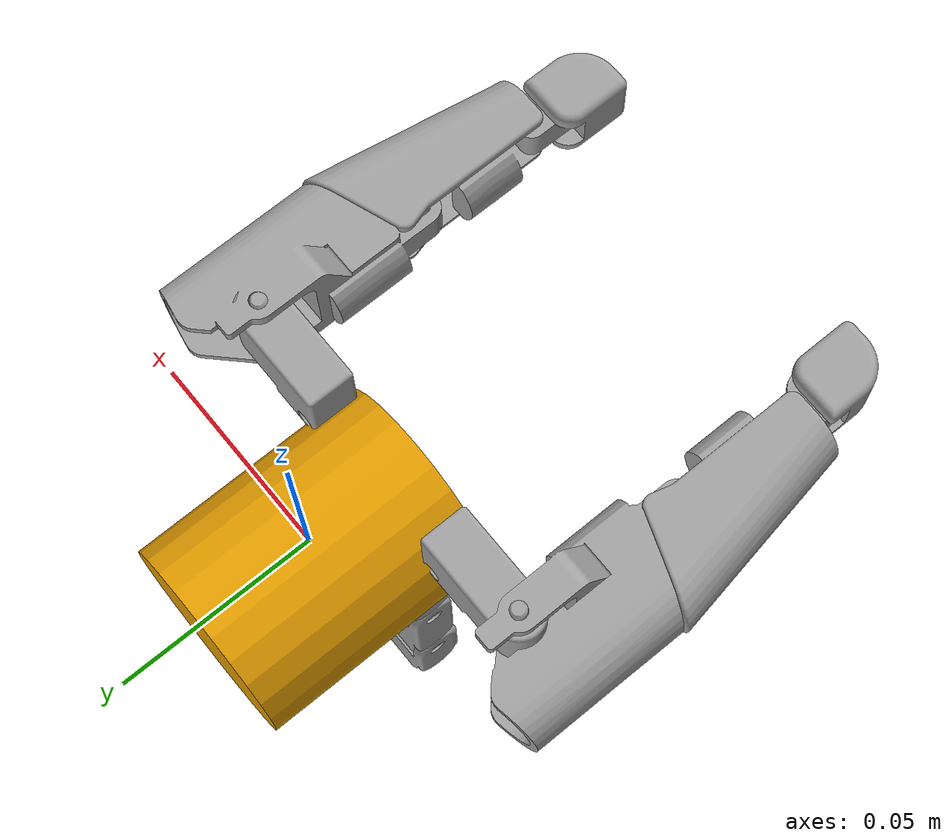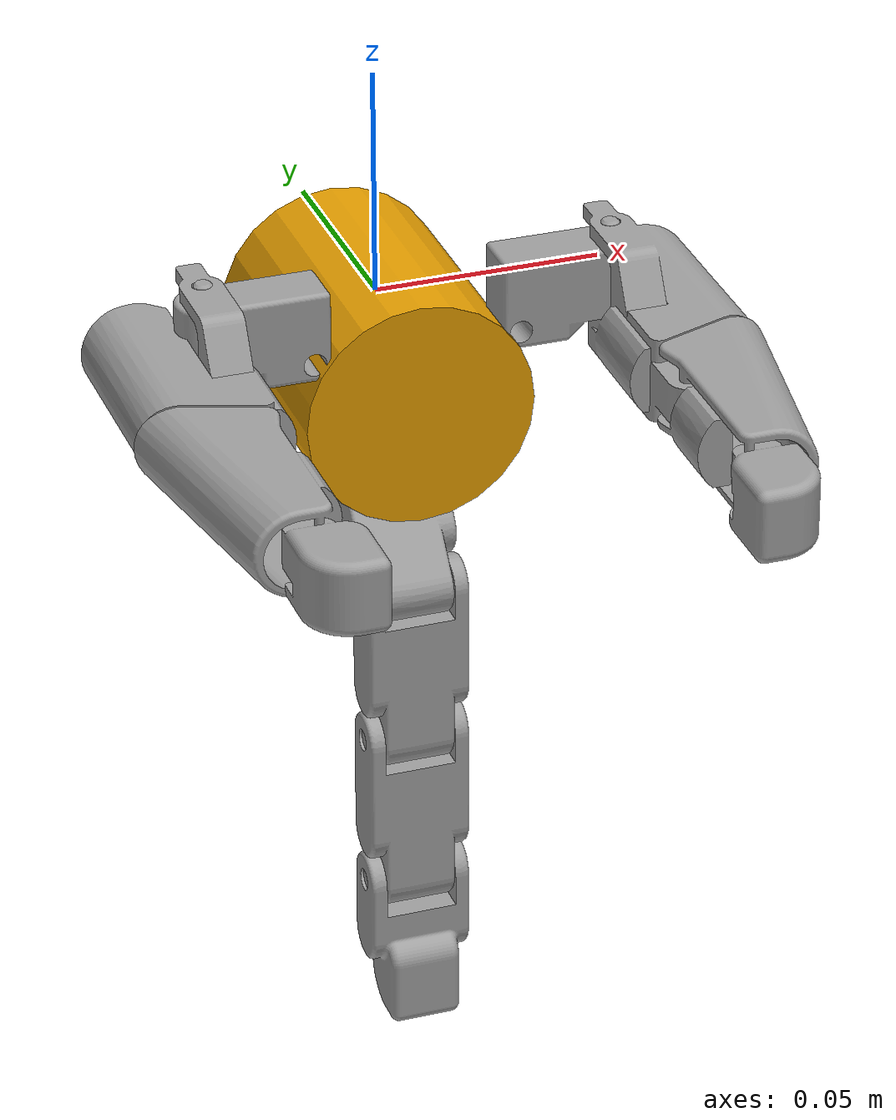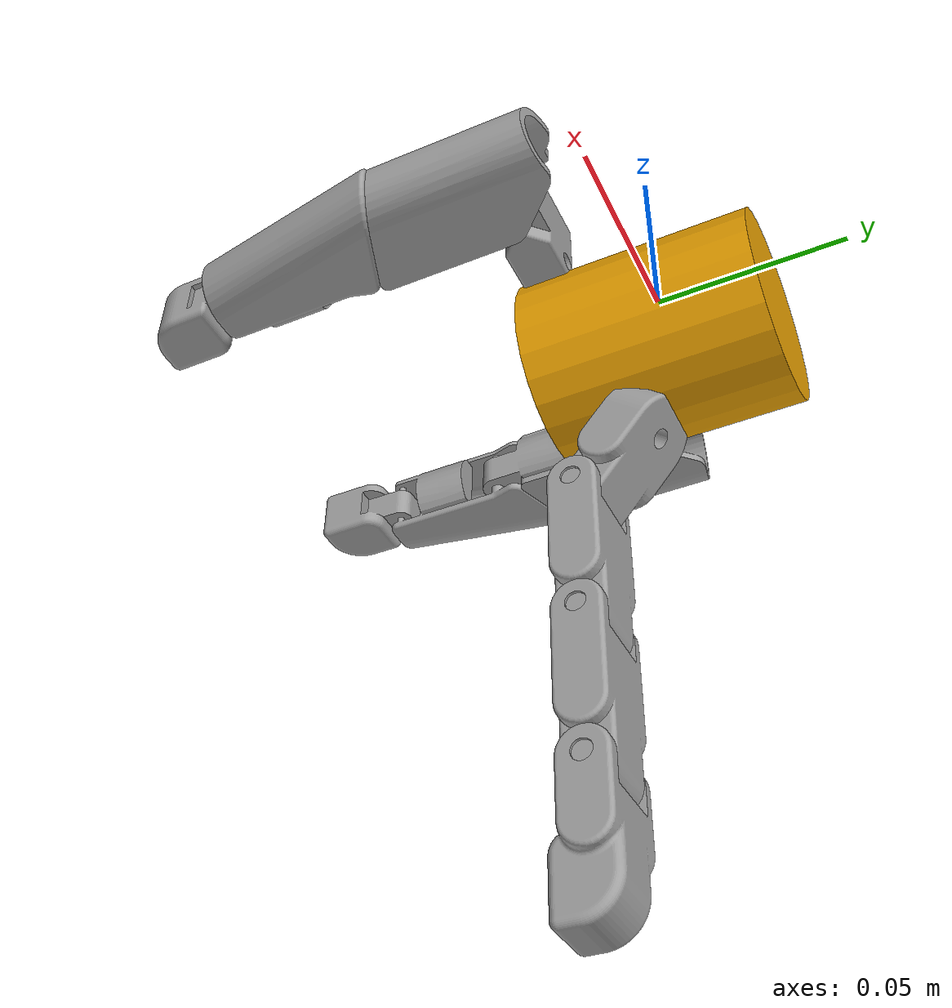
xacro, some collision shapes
<?xml version="1.0"?>
<robot xmlns:xacro="http://ros.org/wiki/xacro" name="k3hand">

  <link name="wrist">
    <visual>
      <geometry>
        <mesh filename="package://mycobot_320_moveit/urdf/k3_urdf/wrist.dae" />
      </geometry>
      <origin xyz="0 0 0" rpy="0 0 0" />
    </visual>
    <collision>
      <geometry>
        <cylinder length="0.06" radius="0.025" />
      </geometry>
      <origin xyz="0 0 -0.015" rpy="-1.570796 0 0" />
    </collision>
    <inertial>
      <mass value="0.1" />
      <inertia ixx="1.0" ixy="0.0" ixz="0.0" iyy="1.0" iyz="0.0" izz="1.0" />
    </inertial>
  </link>
  <link name="thumb_met">
    <visual>
      <geometry>
        <mesh filename="package://mycobot_320_moveit/urdf/k3_urdf/thumb_met.dae" />
      </geometry>
      <origin xyz="0.0 0.0080 0.043" rpy="0 0 0" />
    </visual>
    <collision>
      <geometry>
        <box size="0.0225 0.035 0.012" />
      </geometry>
      <origin xyz="0.0 -0.007 -0.008" rpy="0.88 0 0" />
    </collision>
    <inertial>
      <mass value="0.01" />
      <inertia ixx="1.0" ixy="0.0" ixz="0.0" iyy="1.0" iyz="0.0" izz="1.0" />
    </inertial>
  </link>
  <link name="thumb_middle_1">
    <visual>
      <geometry>
        <mesh filename="package://mycobot_320_moveit/urdf/k3_urdf/thumb_middle_1.dae" />
      </geometry>
      <origin xyz="0.0 0.0225 0.0607" />
    </visual>
    <collision>
      <geometry>
        <box size="0.0225 0.012 0.05" />
      </geometry>
      <origin xyz="0.0 0.0 -0.02" rpy="0 0 0" />
    </collision>
    <inertial>
      <mass value="0.01" />
      <inertia ixx="1.0" ixy="0.0" ixz="0.0" iyy="1.0" iyz="0.0" izz="1.0" />
    </inertial>
  </link>
  <link name="thumb_middle_2">
    <visual>
      <geometry>
        <mesh filename="package://mycobot_320_moveit/urdf/k3_urdf/thumb_middle_2.dae" />
      </geometry>
      <origin xyz="0.0 0.0225 0.0965" />
    </visual>
    <collision>
      <geometry>
        <box size="0.0225 0.012 0.05" />
      </geometry>
      <origin xyz="0.0 0.0 -0.02" rpy="0 0 0" />
    </collision>
    <inertial>
      <mass value="0.01" />
      <inertia ixx="1.0" ixy="0.0" ixz="0.0" iyy="1.0" iyz="0.0" izz="1.0" />
    </inertial>
  </link>

  <link name="thumb_tip">
    <visual>
      <geometry>
        <mesh filename="package://mycobot_320_moveit/urdf/k3_urdf/thumb_tip.dae" />
      </geometry>
      <origin xyz="0.0 0.0225 0.1325" />
    </visual>
    <collision>
      <geometry>
        <box size="0.0225 0.015 0.040" />
      </geometry>
      <origin xyz="0.0 -0.0015 -0.015" rpy="0 0 0" />
    </collision>
    <inertial>
      <mass value="0.01" />
      <inertia ixx="1.0" ixy="0.0" ixz="0.0" iyy="1.0" iyz="0.0" izz="1.0" />
    </inertial>
  </link>

  <link name="fing_met_1">
    <visual>
      <geometry>
        <mesh filename="package://mycobot_320_moveit/urdf/k3_urdf/fing_met_1.dae" />
      </geometry>
      <origin xyz="0.0225 0.0225 0.00" rpy="0.0 0.0 0.0" />
    </visual>
    <collision>
      <geometry>
        <box size="0.020 0.012 0.03" />
      </geometry>
      <origin xyz="0.006 -0.0 0.011" />
    </collision>

    <inertial>
      <mass value="0.01" />
      <inertia ixx="1.0" ixy="0.0" ixz="0.0" iyy="1.0" iyz="0.0" izz="1.0" />
    </inertial>
  </link>

  <link name="fing_base_1">
    <visual>
      <geometry>
        <mesh filename="package://mycobot_320_moveit/urdf/k3_urdf/fing_base_1.dae" />
      </geometry>
      <origin xyz="0.015 0.0225 -0.022" />
    </visual>
    <collision>
      <geometry>
        <box size="0.030 0.03 0.05" />
      </geometry>
      <origin xyz="-0.002 0.008 0.01" />
    </collision>
    <inertial>
      <mass value="0.01" />
      <inertia ixx="1.0" ixy="0.0" ixz="0.0" iyy="1.0" iyz="0.0" izz="1.0" />
    </inertial>
  </link>

  <link name="fing_middle_1">
    <visual>
      <geometry>
        <mesh filename="package://mycobot_320_moveit/urdf/k3_urdf/fing_middle_1.dae" />
      </geometry>
      <origin xyz="0.015 0.0225 -0.022" />
    </visual>
    <collision>
      <geometry>
        <box size="0.020 0.03 0.05" />
      </geometry>
      <origin xyz="-0.007 0.008 0.058" />
    </collision>
    <inertial>
      <mass value="0.01" />
      <inertia ixx="1.0" ixy="0.0" ixz="0.0" iyy="1.0" iyz="0.0" izz="1.0" />
    </inertial>
  </link>
  <link name="fing_tip_1">
    <visual>
      <geometry>
        <mesh filename="package://mycobot_320_moveit/urdf/k3_urdf/fing_tip_1.dae" />
      </geometry>
      <origin xyz="0.015 0.0225 -0.022" />
    </visual>
    <collision>
      <geometry>
        <box size="0.020 0.015 0.02" />
      </geometry>
      <origin xyz="-0.007 0.00 0.09" />
    </collision>
    <inertial>
      <mass value="0.01" />
      <inertia ixx="1.0" ixy="0.0" ixz="0.0" iyy="1.0" iyz="0.0" izz="1.0" />
    </inertial>
  </link>

  <link name="fing_met_2">
    <visual>
      <geometry>
        <mesh filename="package://mycobot_320_moveit/urdf/k3_urdf/fing_met_2.dae" />
      </geometry>
      <origin xyz="-0.0225 0.0225 0.00" rpy="0.0 0.0 0.0" />
    </visual>
    <collision>
      <geometry>
        <box size="0.020 0.0120 0.03" />
      </geometry>
      <origin xyz="-0.006 -0.0 0.011" />
    </collision>

    <inertial>
      <mass value="0.01" />
      <inertia ixx="1.0" ixy="0.0" ixz="0.0" iyy="1.0" iyz="0.0" izz="1.0" />
    </inertial>
  </link>
  <link name="fing_base_2">
    <visual>
      <geometry>
        <mesh filename="package://mycobot_320_moveit/urdf/k3_urdf/fing_base_2.dae" />
      </geometry>
      <origin xyz="-0.015 0.0225 -0.022" />
    </visual>
    <collision>
      <geometry>
        <box size="0.030 0.03 0.05" />
      </geometry>
      <origin xyz="0.002 0.008 0.01" />
    </collision>
    <inertial>
      <mass value="0.01" />
      <inertia ixx="1.0" ixy="0.0" ixz="0.0" iyy="1.0" iyz="0.0" izz="1.0" />
    </inertial>
  </link>

  <link name="fing_middle_2">
    <visual>
      <geometry>
        <mesh filename="package://mycobot_320_moveit/urdf/k3_urdf/fing_middle_2.dae" />
      </geometry>
      <origin xyz="-0.015 0.0225 -0.022" />
    </visual>
    <collision>
      <geometry>
        <box size="0.020 0.03 0.05" />
      </geometry>
      <origin xyz="0.007 0.008 0.058" />
    </collision>
    <inertial>
      <mass value="0.01" />
      <inertia ixx="1.0" ixy="0.0" ixz="0.0" iyy="1.0" iyz="0.0" izz="1.0" />
    </inertial>
  </link>
  <link name="fing_tip_2">
    <visual>
      <geometry>
        <mesh filename="package://mycobot_320_moveit/urdf/k3_urdf/fing_tip_2.dae" />
      </geometry>
      <origin xyz="-0.015 0.0225 -0.022" />
    </visual>
    <collision>
      <geometry>
        <box size="0.020 0.015 0.02" />
      </geometry>
      <origin xyz="0.007 0.0 0.09" />
    </collision>
    <inertial>
      <mass value="0.01" />
      <inertia ixx="1.0" ixy="0.0" ixz="0.0" iyy="1.0" iyz="0.0" izz="1.0" />
    </inertial>
  </link>

  <joint name="hand_joint_0" type="revolute">
    <axis xyz="0.0 -1.0 0.0" />
    <parent link="wrist" />
    <child link="fing_met_1" />
    <origin xyz="-0.0225 -0.0225 0.00" rpy="0 -1.570796 0" />
    <limit lower="-1.570796" upper="0.523599" effort="0.0" velocity="1" />
  </joint>
  <joint name="hand_joint_1" type="revolute">
    <axis xyz="1.0 0.0 0" />
    <parent link="fing_met_1" />
    <child link="fing_base_1" />
    <origin xyz="0.0075 -0.0 0.022" rpy="1.570796 0.0 0.0" />
    <limit lower="-1.570796" upper="1.579796" effort="0.0" velocity="1" />
  </joint>
  <joint name="hand_joint_2" type="revolute">
    <axis xyz="0.0 -1.0 0.0" />
    <parent link="wrist" />
    <child link="fing_met_2" />
    <origin xyz="0.0225 -0.0225 0.00" rpy="0.0 1.570796 0" />
    <limit lower="-0.523599" upper="1.570796" effort="0.0" velocity="1" />
  </joint>
  <joint name="hand_joint_3" type="revolute">
    <axis xyz="-1.0 0.0 0" />
    <parent link="fing_met_2" />
    <child link="fing_base_2" />
    <origin xyz="-0.0075 -0.0 0.022" rpy="1.570796 0.0 0.0" />
    <limit lower="-1.570796" upper="1.570796" effort="0.0" velocity="1" />
  </joint>
  <joint name="hand_joint_4" type="revolute">
    <axis xyz="0.0 1 -1.21" />
    <parent link="wrist" />
    <child link="thumb_met" />
    <origin rpy="0 0 0" xyz="0 -0.0080 -0.043" />
    <limit lower="-1.570796" upper="1.570796" effort="30.0" velocity="1.0" />
  </joint>

  <joint name="hand_joint_5" type="revolute">
    <axis xyz="-1 0.0 0.0" />
    <parent link="thumb_met" />
    <child link="thumb_middle_1" />
    <origin rpy="0 0 0" xyz="0 -0.0145 -0.0177" />
    <limit lower="-0.8726646" upper="2.268928" effort="0.0" velocity="1" />
  </joint>
  <joint name="hand_joint_6" type="revolute">
    <axis xyz="-1 0.0 0.0" />
    <parent link="thumb_middle_1" />
    <child link="thumb_middle_2" />
    <origin rpy="0 0 0" xyz="0 0.0 -0.0358" />
    <limit lower="-1.570796" upper="1.570796" effort="0.0" velocity="1" />
  </joint>
  <joint name="hand_joint_7" type="revolute">
    <axis xyz="-1 0.0 0.0" />
    <parent link="thumb_middle_2" />
    <child link="thumb_tip" />
    <origin rpy="0 0 0" xyz="0 0 -0.036" />
    <limit lower="-1.570796" upper="1.570796" effort="0.0" velocity="1" />
  </joint>

  <joint name="fing_fixed_joint_1_1" type="fixed">
    <parent link="fing_base_1" />
    <child link="fing_middle_1" />
    <origin rpy="0 0 0" xyz="0 0 0.0" />
  </joint>
  <joint name="fing_fixed_joint_1_2" type="fixed">
    <parent link="fing_middle_1" />
    <child link="fing_tip_1" />
    <origin rpy="0 0 0" xyz="0 0 0.0" />
  </joint>
  <joint name="fing_fixed_joint_2_1" type="fixed">
    <parent link="fing_base_2" />
    <child link="fing_middle_2" />
    <origin rpy="0 0 0" xyz="0 0 0.0" />
  </joint>
  <joint name="fing_fixed_joint_2_2" type="fixed">
    <parent link="fing_middle_2" />
    <child link="fing_tip_2" />
    <origin rpy="0 0 0" xyz="0 0 0.0" />
  </joint>

</robot>
